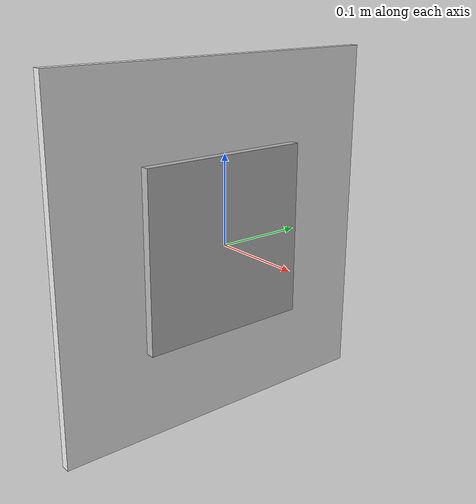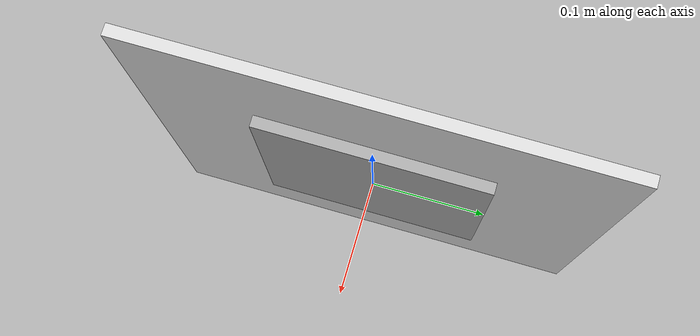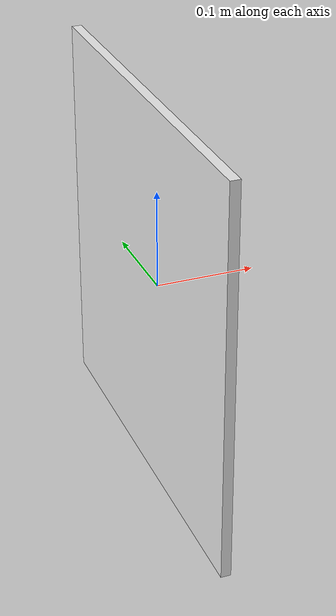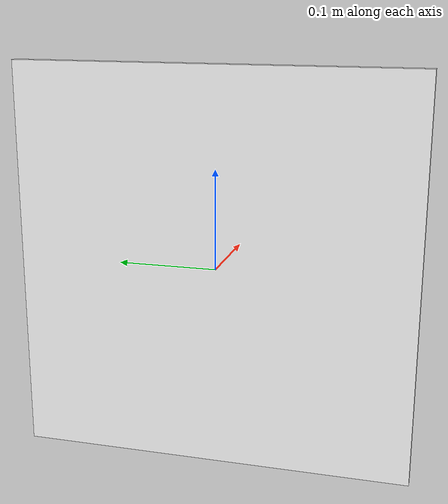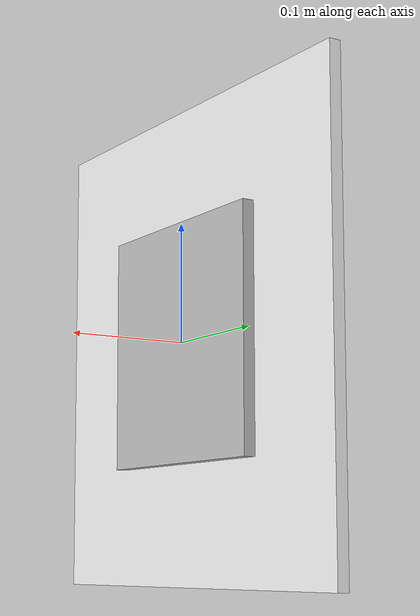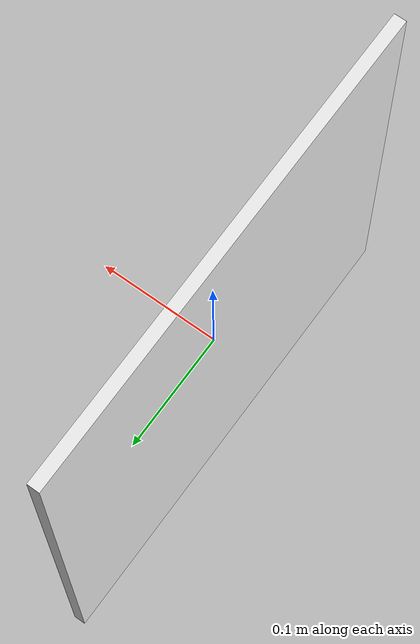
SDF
<?xml version="1.0" ?>
<sdf version="1.4">
  <model name="tag0000">
    <static>true</static>
    <link name="link">
      <pose>0 0 0 0 0 0</pose>
      <inertial>
          <mass>1</mass>
          <inertia>
            <ixx>1</ixx>
            <ixy>0</ixy>
            <ixz>0</ixz>
            <iyy>1</iyy>
            <iyz>0</iyz>
            <izz>1</izz>
          </inertia>
        </inertial>
      <collision name="collision">
        <geometry>
          <box>
            <size>0.01 0.2 0.2</size>
          </box>
        </geometry>
      </collision>
      <visual name="visual">
        <cast_shadows>false</cast_shadows>
        <geometry>
          <box>
            <size>0.01 0.2 0.2</size>
          </box>
        </geometry>
        <material>
          <script>
            <uri>model://tag0001/materials/scripts</uri>
            <uri>model://tag0001/materials/textures</uri>
            <name>Gazebo/arTag_00</name>
          </script>
        </material>
      </visual>
    </link>

<!-- White Base Frame: the camera sees the artags easier-->
    <link name='frame_link'>
	<pose>-0.01 0 0 0 0 0</pose>
        <inertial>
          <mass>1</mass>
          <inertia>
            <ixx>1</ixx>
            <ixy>0</ixy>
            <ixz>0</ixz>
            <iyy>1</iyy>
            <iyz>0</iyz>
            <izz>1</izz>
          </inertia>
        </inertial>
        <collision name='collision'>
          <geometry>
            <box>
              <size>0.01 0.4 0.4</size>
            </box>
          </geometry>
          <max_contacts>10</max_contacts>
          <surface>
            <bounce/>
            <friction>
              <ode/>
            </friction>
            <contact>
              <ode/>
            </contact>
          </surface>
        </collision>
        <visual name='visual'>
          <geometry>
            <box>
              <size>0.01 0.4 0.4</size>
            </box>
          </geometry>
          <material>
            <script>
              <uri>file://media/materials/scripts/gazebo.material</uri>
              <name>Gazebo/White</name>
            </script>
          </material>
        </visual>
        <velocity_decay>
          <linear>0</linear>
          <angular>0</angular>
        </velocity_decay>
        <self_collide>0</self_collide>
        <kinematic>0</kinematic>
        <gravity>0</gravity>
      </link>
  </model>
</sdf>
